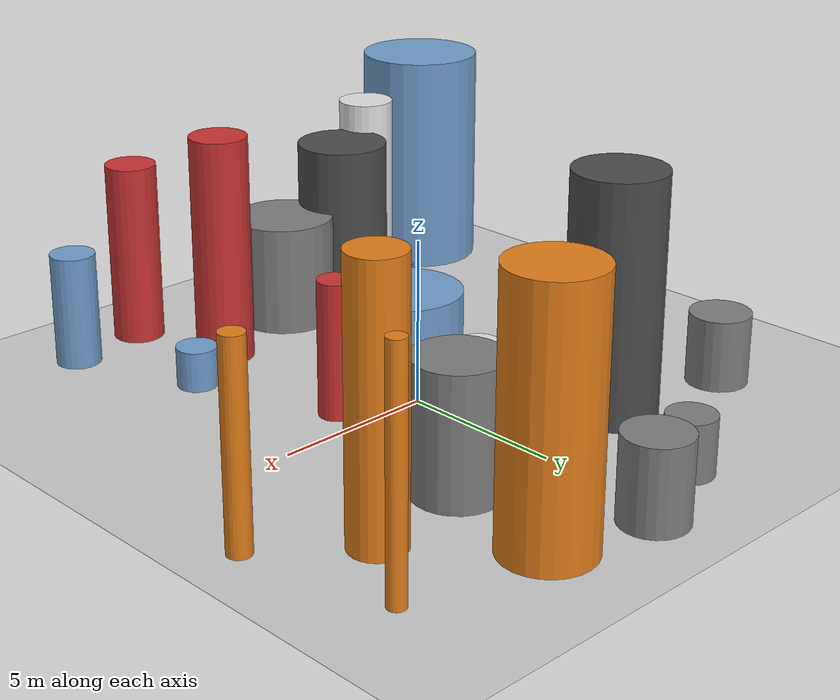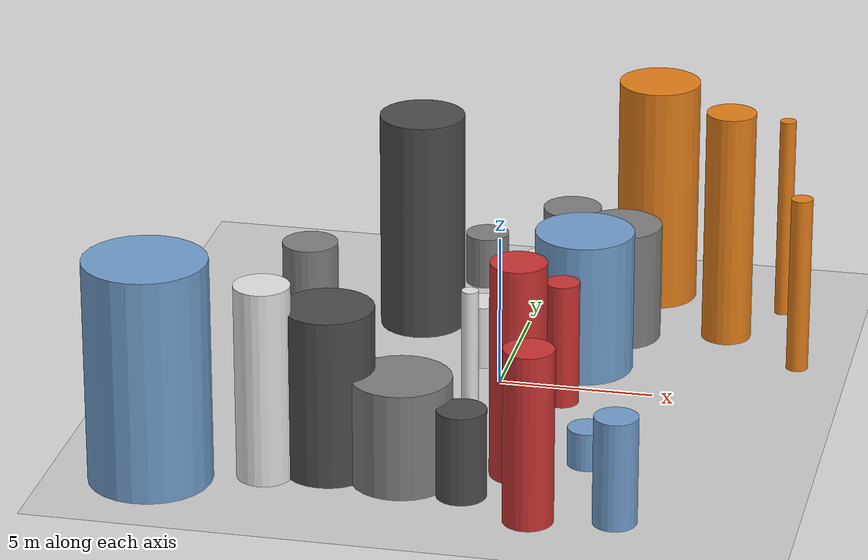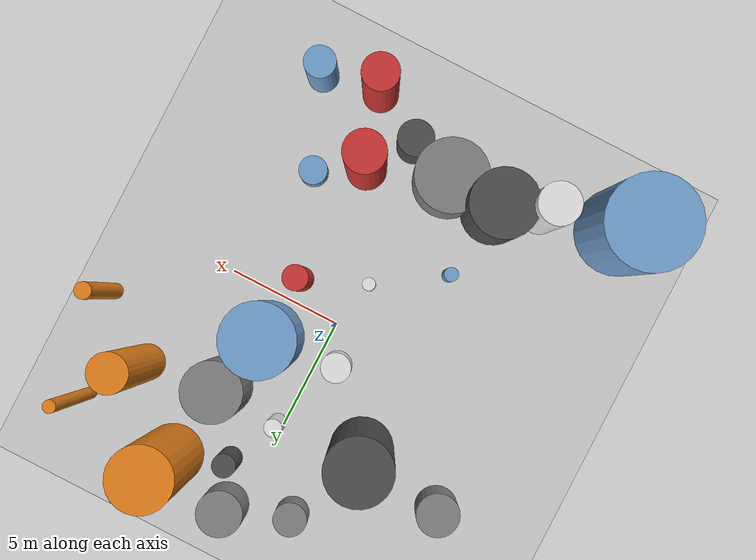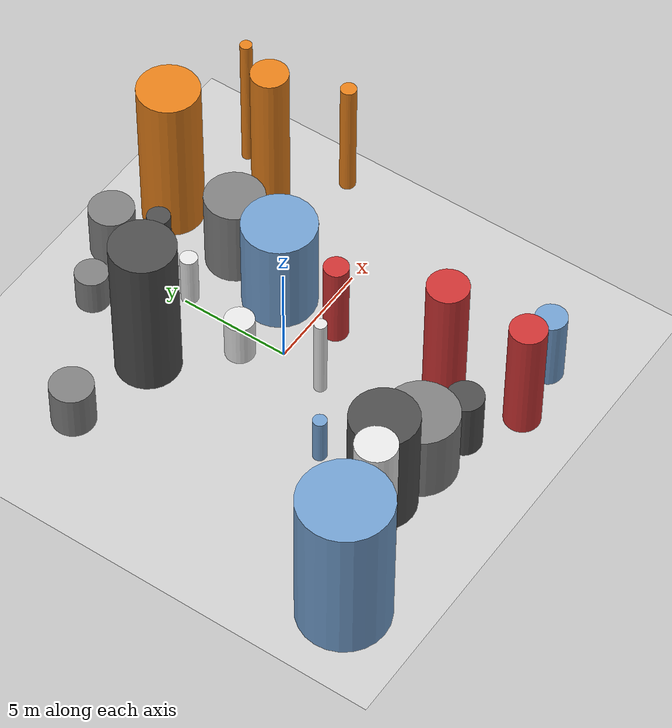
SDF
<?xml version='1.0'?>
<sdf version='1.6'>
  <world name='default'>
    <!-- Sun light -->
    <light name='sun' type='directional'>
      <cast_shadows>1</cast_shadows>
      <pose>0 0 10 0 0 0</pose>
      <diffuse>0.8 0.8 0.8 1</diffuse>
      <specular>0.2 0.2 0.2 1</specular>
      <attenuation>
        <range>1000</range>
        <constant>0.9</constant>
        <linear>0.01</linear>
        <quadratic>0.001</quadratic>
      </attenuation>
      <direction>-0.5 0.1 -0.9</direction>
    </light>

    <!-- Ground plane -->
    <model name='ground_plane'>
      <static>1</static>
      <link name='link'>
        <collision name='collision'>
          <geometry>
            <plane>
              <normal>0 0 1</normal>
              <size>100 100</size>
            </plane>
          </geometry>
          <surface>
            <contact>
              <collide_bitmask>65535</collide_bitmask>
              <ode/>
            </contact>
            <friction>
              <ode>
                <mu>100</mu>
                <mu2>50</mu2>
              </ode>
              <torsional><ode/></torsional>
            </friction>
            <bounce/>
          </surface>
          <max_contacts>10</max_contacts>
        </collision>
        <visual name='visual'>
          <cast_shadows>0</cast_shadows>
          <geometry>
            <plane>
              <normal>0 0 1</normal>
              <size>100 100</size>
            </plane>
          </geometry>
          <material>
            <script>
              <uri>file://media/materials/scripts/gazebo.material</uri>
              <n>Gazebo/Grey</n>
            </script>
          </material>
        </visual>
      </link>
    </model>

    <!-- Environment -->
    <magnetic_field>6e-06 2.3e-05 -4.2e-05</magnetic_field>
    <atmosphere type='adiabatic'/>
    <physics name='default_physics' default='0' type='ode'>
      <gravity>0 0 -9.8</gravity>
      <max_step_size>0.004</max_step_size>
      <real_time_factor>1</real_time_factor>
      <real_time_update_rate>250</real_time_update_rate>
    </physics>
    <scene>
      <ambient>0.4 0.4 0.4 1</ambient>
      <background>0.7 0.7 0.7 1</background>
      <shadows>1</shadows>
    </scene>
    <wind/>
    <spherical_coordinates>
      <surface_model>EARTH_WGS84</surface_model>
      <latitude_deg>0</latitude_deg>
      <longitude_deg>0</longitude_deg>
      <elevation>0</elevation>
      <heading_deg>0</heading_deg>
    </spherical_coordinates>

    <!-- ============ OBSTACLES (25) ============ -->
    <model name='obs_00'>
      <static>1</static>
      <link name='link'>
        <visual name='visual'>
          <geometry>
            <cylinder>
              <radius>1.3131</radius>
              <length>3.9445</length>
            </cylinder>
          </geometry>
          <material>
            <script>
              <n>Gazebo/Grey</n>
              <uri>file://media/materials/scripts/gazebo.material</uri>
            </script>
            <ambient>0.5 0.5 0.5 1</ambient>
          </material>
        </visual>
        <collision name='collision'>
          <geometry>
            <cylinder>
              <radius>1.3131</radius>
              <length>3.9445</length>
            </cylinder>
          </geometry>
          <max_contacts>10</max_contacts>
          <surface>
            <contact><ode/></contact>
            <bounce/>
            <friction>
              <ode><mu>1</mu><mu2>1</mu2></ode>
              <torsional><ode/></torsional>
            </friction>
          </surface>
        </collision>
      </link>
      <pose>3.1474 4.6752 1.9722 0 0 2.4824</pose>
    </model>

    <model name='obs_01'>
      <static>1</static>
      <link name='link'>
        <visual name='visual'>
          <geometry>
            <cylinder>
              <radius>1.3558</radius>
              <length>7.6536</length>
            </cylinder>
          </geometry>
          <material>
            <script>
              <n>Gazebo/Orange</n>
              <uri>file://media/materials/scripts/gazebo.material</uri>
            </script>
            <ambient>0.9 0.5 0.1 1</ambient>
          </material>
        </visual>
        <collision name='collision'>
          <geometry>
            <cylinder>
              <radius>1.3558</radius>
              <length>7.6536</length>
            </cylinder>
          </geometry>
          <max_contacts>10</max_contacts>
          <surface>
            <contact><ode/></contact>
            <bounce/>
            <friction>
              <ode><mu>1</mu><mu2>1</mu2></ode>
              <torsional><ode/></torsional>
            </friction>
          </surface>
        </collision>
      </link>
      <pose>3.7222 8.3562 3.8268 0 0 1.9020</pose>
    </model>

    <model name='obs_02'>
      <static>1</static>
      <link name='link'>
        <visual name='visual'>
          <geometry>
            <cylinder>
              <radius>0.5475</radius>
              <length>4.1605</length>
            </cylinder>
          </geometry>
          <material>
            <script>
              <n>Gazebo/Red</n>
              <uri>file://media/materials/scripts/gazebo.material</uri>
            </script>
            <ambient>0.8 0.2 0.2 1</ambient>
          </material>
        </visual>
        <collision name='collision'>
          <geometry>
            <cylinder>
              <radius>0.5475</radius>
              <length>4.1605</length>
            </cylinder>
          </geometry>
          <max_contacts>10</max_contacts>
          <surface>
            <contact><ode/></contact>
            <bounce/>
            <friction>
              <ode><mu>1</mu><mu2>1</mu2></ode>
              <torsional><ode/></torsional>
            </friction>
          </surface>
        </collision>
      </link>
      <pose>2.2387 -1.0476 2.0802 0 0 1.7746</pose>
    </model>

    <model name='obs_03'>
      <static>1</static>
      <link name='link'>
        <visual name='visual'>
          <geometry>
            <cylinder>
              <radius>0.3077</radius>
              <length>2.2980</length>
            </cylinder>
          </geometry>
          <material>
            <script>
              <n>Gazebo/Blue</n>
              <uri>file://media/materials/scripts/gazebo.material</uri>
            </script>
            <ambient>0.447 0.624 0.812 1</ambient>
          </material>
        </visual>
        <collision name='collision'>
          <geometry>
            <cylinder>
              <radius>0.3077</radius>
              <length>2.2980</length>
            </cylinder>
          </geometry>
          <max_contacts>10</max_contacts>
          <surface>
            <contact><ode/></contact>
            <bounce/>
            <friction>
              <ode><mu>1</mu><mu2>1</mu2></ode>
              <torsional><ode/></torsional>
            </friction>
          </surface>
        </collision>
      </link>
      <pose>-3.4133 -4.1509 1.1490 0 0 0.9098</pose>
    </model>

    <model name='obs_04'>
      <static>1</static>
      <link name='link'>
        <visual name='visual'>
          <geometry>
            <cylinder>
              <radius>0.5129</radius>
              <length>2.5848</length>
            </cylinder>
          </geometry>
          <material>
            <script>
              <n>Gazebo/DarkGrey</n>
              <uri>file://media/materials/scripts/gazebo.material</uri>
            </script>
            <ambient>0.3 0.3 0.3 1</ambient>
          </material>
        </visual>
        <collision name='collision'>
          <geometry>
            <cylinder>
              <radius>0.5129</radius>
              <length>2.5848</length>
            </cylinder>
          </geometry>
          <max_contacts>10</max_contacts>
          <surface>
            <contact><ode/></contact>
            <bounce/>
            <friction>
              <ode><mu>1</mu><mu2>1</mu2></ode>
              <torsional><ode/></torsional>
            </friction>
          </surface>
        </collision>
      </link>
      <pose>1.3928 7.3396 1.2924 0 0 0.1012</pose>
    </model>

    <model name='obs_05'>
      <static>1</static>
      <link name='link'>
        <visual name='visual'>
          <geometry>
            <cylinder>
              <radius>0.7885</radius>
              <length>5.6903</length>
            </cylinder>
          </geometry>
          <material>
            <script>
              <n>Gazebo/Red</n>
              <uri>file://media/materials/scripts/gazebo.material</uri>
            </script>
            <ambient>0.8 0.2 0.2 1</ambient>
          </material>
        </visual>
        <collision name='collision'>
          <geometry>
            <cylinder>
              <radius>0.7885</radius>
              <length>5.6903</length>
            </cylinder>
          </geometry>
          <max_contacts>10</max_contacts>
          <surface>
            <contact><ode/></contact>
            <bounce/>
            <friction>
              <ode><mu>1</mu><mu2>1</mu2></ode>
              <torsional><ode/></torsional>
            </friction>
          </surface>
        </collision>
      </link>
      <pose>2.8615 -9.8086 2.8452 0 0 1.8029</pose>
    </model>

    <model name='obs_06'>
      <static>1</static>
      <link name='link'>
        <visual name='visual'>
          <geometry>
            <cylinder>
              <radius>0.2684</radius>
              <length>6.8738</length>
            </cylinder>
          </geometry>
          <material>
            <script>
              <n>Gazebo/Orange</n>
              <uri>file://media/materials/scripts/gazebo.material</uri>
            </script>
            <ambient>0.9 0.5 0.1 1</ambient>
          </material>
        </visual>
        <collision name='collision'>
          <geometry>
            <cylinder>
              <radius>0.2684</radius>
              <length>6.8738</length>
            </cylinder>
          </geometry>
          <max_contacts>10</max_contacts>
          <surface>
            <contact><ode/></contact>
            <bounce/>
            <friction>
              <ode><mu>1</mu><mu2>1</mu2></ode>
              <torsional><ode/></torsional>
            </friction>
          </surface>
        </collision>
      </link>
      <pose>8.1532 7.6130 3.4369 0 0 2.6851</pose>
    </model>

    <model name='obs_07'>
      <static>1</static>
      <link name='link'>
        <visual name='visual'>
          <geometry>
            <cylinder>
              <radius>1.4072</radius>
              <length>7.3898</length>
            </cylinder>
          </geometry>
          <material>
            <script>
              <n>Gazebo/DarkGrey</n>
              <uri>file://media/materials/scripts/gazebo.material</uri>
            </script>
            <ambient>0.3 0.3 0.3 1</ambient>
          </material>
        </visual>
        <collision name='collision'>
          <geometry>
            <cylinder>
              <radius>1.4072</radius>
              <length>7.3898</length>
            </cylinder>
          </geometry>
          <max_contacts>10</max_contacts>
          <surface>
            <contact><ode/></contact>
            <bounce/>
            <friction>
              <ode><mu>1</mu><mu2>1</mu2></ode>
              <torsional><ode/></torsional>
            </friction>
          </surface>
        </collision>
      </link>
      <pose>-3.5132 4.3429 3.6949 0 0 1.5932</pose>
    </model>

    <model name='obs_08'>
      <static>1</static>
      <link name='link'>
        <visual name='visual'>
          <geometry>
            <cylinder>
              <radius>0.6255</radius>
              <length>1.2406</length>
            </cylinder>
          </geometry>
          <material>
            <script>
              <n>Gazebo/Blue</n>
              <uri>file://media/materials/scripts/gazebo.material</uri>
            </script>
            <ambient>0.447 0.624 0.812 1</ambient>
          </material>
        </visual>
        <collision name='collision'>
          <geometry>
            <cylinder>
              <radius>0.6255</radius>
              <length>1.2406</length>
            </cylinder>
          </geometry>
          <max_contacts>10</max_contacts>
          <surface>
            <contact><ode/></contact>
            <bounce/>
            <friction>
              <ode><mu>1</mu><mu2>1</mu2></ode>
              <torsional><ode/></torsional>
            </friction>
          </surface>
        </collision>
      </link>
      <pose>3.8772 -5.4441 0.6203 0 0 2.7510</pose>
    </model>

    <model name='obs_09'>
      <static>1</static>
      <link name='link'>
        <visual name='visual'>
          <geometry>
            <cylinder>
              <radius>1.6147</radius>
              <length>4.7481</length>
            </cylinder>
          </geometry>
          <material>
            <script>
              <n>Gazebo/Blue</n>
              <uri>file://media/materials/scripts/gazebo.material</uri>
            </script>
            <ambient>0.447 0.624 0.812 1</ambient>
          </material>
        </visual>
        <collision name='collision'>
          <geometry>
            <cylinder>
              <radius>1.6147</radius>
              <length>4.7481</length>
            </cylinder>
          </geometry>
          <max_contacts>10</max_contacts>
          <surface>
            <contact><ode/></contact>
            <bounce/>
            <friction>
              <ode><mu>1</mu><mu2>1</mu2></ode>
              <torsional><ode/></torsional>
            </friction>
          </surface>
        </collision>
      </link>
      <pose>2.3999 1.8864 2.3740 0 0 1.1353</pose>
    </model>

    <model name='obs_10'>
      <static>1</static>
      <link name='link'>
        <visual name='visual'>
          <geometry>
            <cylinder>
              <radius>0.6514</radius>
              <length>2.1181</length>
            </cylinder>
          </geometry>
          <material>
            <script>
              <n>Gazebo/White</n>
              <uri>file://media/materials/scripts/gazebo.material</uri>
            </script>
            <ambient>0.9 0.9 0.9 1</ambient>
          </material>
        </visual>
        <collision name='collision'>
          <geometry>
            <cylinder>
              <radius>0.6514</radius>
              <length>2.1181</length>
            </cylinder>
          </geometry>
          <max_contacts>10</max_contacts>
          <surface>
            <contact><ode/></contact>
            <bounce/>
            <friction>
              <ode><mu>1</mu><mu2>1</mu2></ode>
              <torsional><ode/></torsional>
            </friction>
          </surface>
        </collision>
      </link>
      <pose>-0.8927 1.5860 1.0590 0 0 1.6922</pose>
    </model>

    <model name='obs_11'>
      <static>1</static>
      <link name='link'>
        <visual name='visual'>
          <geometry>
            <cylinder>
              <radius>1.4471</radius>
              <length>5.4821</length>
            </cylinder>
          </geometry>
          <material>
            <script>
              <n>Gazebo/DarkGrey</n>
              <uri>file://media/materials/scripts/gazebo.material</uri>
            </script>
            <ambient>0.3 0.3 0.3 1</ambient>
          </material>
        </visual>
        <collision name='collision'>
          <geometry>
            <cylinder>
              <radius>1.4471</radius>
              <length>5.4821</length>
            </cylinder>
          </geometry>
          <max_contacts>10</max_contacts>
          <surface>
            <contact><ode/></contact>
            <bounce/>
            <friction>
              <ode><mu>1</mu><mu2>1</mu2></ode>
              <torsional><ode/></torsional>
            </friction>
          </surface>
        </collision>
      </link>
      <pose>-3.8661 -7.4976 2.7411 0 0 0.2677</pose>
    </model>

    <model name='obs_12'>
      <static>1</static>
      <link name='link'>
        <visual name='visual'>
          <geometry>
            <cylinder>
              <radius>0.8200</radius>
              <length>7.9038</length>
            </cylinder>
          </geometry>
          <material>
            <script>
              <n>Gazebo/Orange</n>
              <uri>file://media/materials/scripts/gazebo.material</uri>
            </script>
            <ambient>0.9 0.5 0.1 1</ambient>
          </material>
        </visual>
        <collision name='collision'>
          <geometry>
            <cylinder>
              <radius>0.8200</radius>
              <length>7.9038</length>
            </cylinder>
          </geometry>
          <max_contacts>10</max_contacts>
          <surface>
            <contact><ode/></contact>
            <bounce/>
            <friction>
              <ode><mu>1</mu><mu2>1</mu2></ode>
              <torsional><ode/></torsional>
            </friction>
          </surface>
        </collision>
      </link>
      <pose>6.5897 5.3005 3.9519 0 0 2.6429</pose>
    </model>

    <model name='obs_13'>
      <static>1</static>
      <link name='link'>
        <visual name='visual'>
          <geometry>
            <cylinder>
              <radius>0.7339</radius>
              <length>1.7624</length>
            </cylinder>
          </geometry>
          <material>
            <script>
              <n>Gazebo/Grey</n>
              <uri>file://media/materials/scripts/gazebo.material</uri>
            </script>
            <ambient>0.5 0.5 0.5 1</ambient>
          </material>
        </visual>
        <collision name='collision'>
          <geometry>
            <cylinder>
              <radius>0.7339</radius>
              <length>1.7624</length>
            </cylinder>
          </geometry>
          <max_contacts>10</max_contacts>
          <surface>
            <contact><ode/></contact>
            <bounce/>
            <friction>
              <ode><mu>1</mu><mu2>1</mu2></ode>
              <torsional><ode/></torsional>
            </friction>
          </surface>
        </collision>
      </link>
      <pose>-2.1163 8.2315 0.8812 0 0 1.4317</pose>
    </model>

    <model name='obs_14'>
      <static>1</static>
      <link name='link'>
        <visual name='visual'>
          <geometry>
            <cylinder>
              <radius>0.2754</radius>
              <length>4.0942</length>
            </cylinder>
          </geometry>
          <material>
            <script>
              <n>Gazebo/White</n>
              <uri>file://media/materials/scripts/gazebo.material</uri>
            </script>
            <ambient>0.9 0.9 0.9 1</ambient>
          </material>
        </visual>
        <collision name='collision'>
          <geometry>
            <cylinder>
              <radius>0.2754</radius>
              <length>4.0942</length>
            </cylinder>
          </geometry>
          <max_contacts>10</max_contacts>
          <surface>
            <contact><ode/></contact>
            <bounce/>
            <friction>
              <ode><mu>1</mu><mu2>1</mu2></ode>
              <torsional><ode/></torsional>
            </friction>
          </surface>
        </collision>
      </link>
      <pose>-0.5326 -2.1862 2.0471 0 0 0.4314</pose>
    </model>

    <model name='obs_15'>
      <static>1</static>
      <link name='link'>
        <visual name='visual'>
          <geometry>
            <cylinder>
              <radius>0.9953</radius>
              <length>2.5371</length>
            </cylinder>
          </geometry>
          <material>
            <script>
              <n>Gazebo/Grey</n>
              <uri>file://media/materials/scripts/gazebo.material</uri>
            </script>
            <ambient>0.5 0.5 0.5 1</ambient>
          </material>
        </visual>
        <collision name='collision'>
          <geometry>
            <cylinder>
              <radius>0.9953</radius>
              <length>2.5371</length>
            </cylinder>
          </geometry>
          <max_contacts>10</max_contacts>
          <surface>
            <contact><ode/></contact>
            <bounce/>
            <friction>
              <ode><mu>1</mu><mu2>1</mu2></ode>
              <torsional><ode/></torsional>
            </friction>
          </surface>
        </collision>
      </link>
      <pose>0.6404 9.2316 1.2686 0 0 1.7697</pose>
    </model>

    <model name='obs_16'>
      <static>1</static>
      <link name='link'>
        <visual name='visual'>
          <geometry>
            <cylinder>
              <radius>0.3557</radius>
              <length>5.9399</length>
            </cylinder>
          </geometry>
          <material>
            <script>
              <n>Gazebo/Orange</n>
              <uri>file://media/materials/scripts/gazebo.material</uri>
            </script>
            <ambient>0.9 0.5 0.1 1</ambient>
          </material>
        </visual>
        <collision name='collision'>
          <geometry>
            <cylinder>
              <radius>0.3557</radius>
              <length>5.9399</length>
            </cylinder>
          </geometry>
          <max_contacts>10</max_contacts>
          <surface>
            <contact><ode/></contact>
            <bounce/>
            <friction>
              <ode><mu>1</mu><mu2>1</mu2></ode>
              <torsional><ode/></torsional>
            </friction>
          </surface>
        </collision>
      </link>
      <pose>9.2566 3.1713 2.9700 0 0 2.6553</pose>
    </model>

    <model name='obs_17'>
      <static>1</static>
      <link name='link'>
        <visual name='visual'>
          <geometry>
            <cylinder>
              <radius>1.5903</radius>
              <length>3.4648</length>
            </cylinder>
          </geometry>
          <material>
            <script>
              <n>Gazebo/Grey</n>
              <uri>file://media/materials/scripts/gazebo.material</uri>
            </script>
            <ambient>0.5 0.5 0.5 1</ambient>
          </material>
        </visual>
        <collision name='collision'>
          <geometry>
            <cylinder>
              <radius>1.5903</radius>
              <length>3.4648</length>
            </cylinder>
          </geometry>
          <max_contacts>10</max_contacts>
          <surface>
            <contact><ode/></contact>
            <bounce/>
            <friction>
              <ode><mu>1</mu><mu2>1</mu2></ode>
              <torsional><ode/></torsional>
            </friction>
          </surface>
        </collision>
      </link>
      <pose>-1.5244 -7.7385 1.7324 0 0 0.2024</pose>
    </model>

    <model name='obs_18'>
      <static>1</static>
      <link name='link'>
        <visual name='visual'>
          <geometry>
            <cylinder>
              <radius>0.6901</radius>
              <length>3.5267</length>
            </cylinder>
          </geometry>
          <material>
            <script>
              <n>Gazebo/Blue</n>
              <uri>file://media/materials/scripts/gazebo.material</uri>
            </script>
            <ambient>0.447 0.624 0.812 1</ambient>
          </material>
        </visual>
        <collision name='collision'>
          <geometry>
            <cylinder>
              <radius>0.6901</radius>
              <length>3.5267</length>
            </cylinder>
          </geometry>
          <max_contacts>10</max_contacts>
          <surface>
            <contact><ode/></contact>
            <bounce/>
            <friction>
              <ode><mu>1</mu><mu2>1</mu2></ode>
              <torsional><ode/></torsional>
            </friction>
          </surface>
        </collision>
      </link>
      <pose>5.4522 -9.3687 1.7633 0 0 1.9637</pose>
    </model>

    <model name='obs_19'>
      <static>1</static>
      <link name='link'>
        <visual name='visual'>
          <geometry>
            <cylinder>
              <radius>0.8862</radius>
              <length>6.3846</length>
            </cylinder>
          </geometry>
          <material>
            <script>
              <n>Gazebo/White</n>
              <uri>file://media/materials/scripts/gazebo.material</uri>
            </script>
            <ambient>0.9 0.9 0.9 1</ambient>
          </material>
        </visual>
        <collision name='collision'>
          <geometry>
            <cylinder>
              <radius>0.8862</radius>
              <length>6.3846</length>
            </cylinder>
          </geometry>
          <max_contacts>10</max_contacts>
          <surface>
            <contact><ode/></contact>
            <bounce/>
            <friction>
              <ode><mu>1</mu><mu2>1</mu2></ode>
              <torsional><ode/></torsional>
            </friction>
          </surface>
        </collision>
      </link>
      <pose>-5.7184 -8.3566 3.1923 0 0 1.2062</pose>
    </model>

    <model name='obs_20'>
      <static>1</static>
      <link name='link'>
        <visual name='visual'>
          <geometry>
            <cylinder>
              <radius>0.9417</radius>
              <length>2.2086</length>
            </cylinder>
          </geometry>
          <material>
            <script>
              <n>Gazebo/Grey</n>
              <uri>file://media/materials/scripts/gazebo.material</uri>
            </script>
            <ambient>0.5 0.5 0.5 1</ambient>
          </material>
        </visual>
        <collision name='collision'>
          <geometry>
            <cylinder>
              <radius>0.9417</radius>
              <length>2.2086</length>
            </cylinder>
          </geometry>
          <max_contacts>10</max_contacts>
          <surface>
            <contact><ode/></contact>
            <bounce/>
            <friction>
              <ode><mu>1</mu><mu2>1</mu2></ode>
              <torsional><ode/></torsional>
            </friction>
          </surface>
        </collision>
      </link>
      <pose>-7.5736 5.1141 1.1043 0 0 3.0679</pose>
    </model>

    <model name='obs_21'>
      <static>1</static>
      <link name='link'>
        <visual name='visual'>
          <geometry>
            <cylinder>
              <radius>1.9511</radius>
              <length>7.2867</length>
            </cylinder>
          </geometry>
          <material>
            <script>
              <n>Gazebo/Blue</n>
              <uri>file://media/materials/scripts/gazebo.material</uri>
            </script>
            <ambient>0.447 0.624 0.812 1</ambient>
          </material>
        </visual>
        <collision name='collision'>
          <geometry>
            <cylinder>
              <radius>1.9511</radius>
              <length>7.2867</length>
            </cylinder>
          </geometry>
          <max_contacts>10</max_contacts>
          <surface>
            <contact><ode/></contact>
            <bounce/>
            <friction>
              <ode><mu>1</mu><mu2>1</mu2></ode>
              <torsional><ode/></torsional>
            </friction>
          </surface>
        </collision>
      </link>
      <pose>-9.1321 -9.2494 3.6434 0 0 1.5575</pose>
    </model>

    <model name='obs_22'>
      <static>1</static>
      <link name='link'>
        <visual name='visual'>
          <geometry>
            <cylinder>
              <radius>0.8894</radius>
              <length>7.0828</length>
            </cylinder>
          </geometry>
          <material>
            <script>
              <n>Gazebo/Red</n>
              <uri>file://media/materials/scripts/gazebo.material</uri>
            </script>
            <ambient>0.8 0.2 0.2 1</ambient>
          </material>
        </visual>
        <collision name='collision'>
          <geometry>
            <cylinder>
              <radius>0.8894</radius>
              <length>7.0828</length>
            </cylinder>
          </geometry>
          <max_contacts>10</max_contacts>
          <surface>
            <contact><ode/></contact>
            <bounce/>
            <friction>
              <ode><mu>1</mu><mu2>1</mu2></ode>
              <torsional><ode/></torsional>
            </friction>
          </surface>
        </collision>
      </link>
      <pose>1.9002 -6.5972 3.5414 0 0 0.6648</pose>
    </model>

    <model name='obs_23'>
      <static>1</static>
      <link name='link'>
        <visual name='visual'>
          <geometry>
            <cylinder>
              <radius>0.7907</radius>
              <length>2.8957</length>
            </cylinder>
          </geometry>
          <material>
            <script>
              <n>Gazebo/DarkGrey</n>
              <uri>file://media/materials/scripts/gazebo.material</uri>
            </script>
            <ambient>0.3 0.3 0.3 1</ambient>
          </material>
        </visual>
        <collision name='collision'>
          <geometry>
            <cylinder>
              <radius>0.7907</radius>
              <length>2.8957</length>
            </cylinder>
          </geometry>
          <max_contacts>10</max_contacts>
          <surface>
            <contact><ode/></contact>
            <bounce/>
            <friction>
              <ode><mu>1</mu><mu2>1</mu2></ode>
              <torsional><ode/></torsional>
            </friction>
          </surface>
        </collision>
      </link>
      <pose>0.5218 -8.4872 1.4479 0 0 0.3279</pose>
    </model>

    <model name='obs_24'>
      <static>1</static>
      <link name='link'>
        <visual name='visual'>
          <geometry>
            <cylinder>
              <radius>0.3868</radius>
              <length>2.5522</length>
            </cylinder>
          </geometry>
          <material>
            <script>
              <n>Gazebo/White</n>
              <uri>file://media/materials/scripts/gazebo.material</uri>
            </script>
            <ambient>0.9 0.9 0.9 1</ambient>
          </material>
        </visual>
        <collision name='collision'>
          <geometry>
            <cylinder>
              <radius>0.3868</radius>
              <length>2.5522</length>
            </cylinder>
          </geometry>
          <max_contacts>10</max_contacts>
          <surface>
            <contact><ode/></contact>
            <bounce/>
            <friction>
              <ode><mu>1</mu><mu2>1</mu2></ode>
              <torsional><ode/></torsional>
            </friction>
          </surface>
        </collision>
      </link>
      <pose>0.2904 4.9926 1.2761 0 0 0.9719</pose>
    </model>

    <!-- GUI camera -->
    <gui fullscreen='0'>
      <camera name='user_camera'>
        <pose>-15 0 18 0 0.85 0.15</pose>
        <view_controller>orbit</view_controller>
        <projection_type>perspective</projection_type>
      </camera>
    </gui>
  </world>
</sdf>
